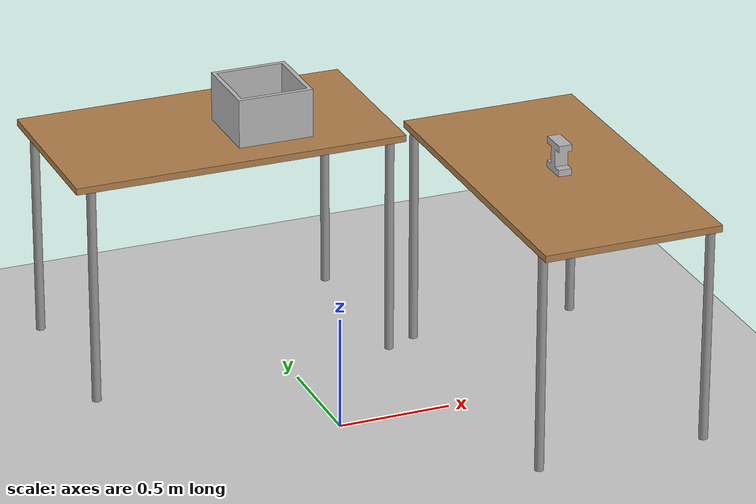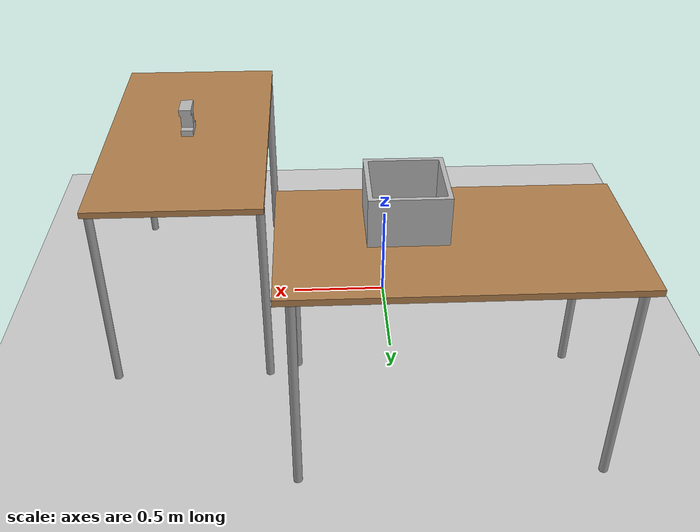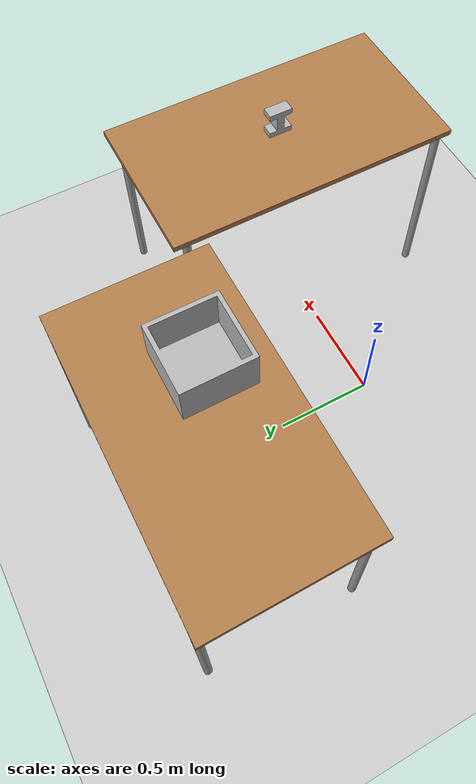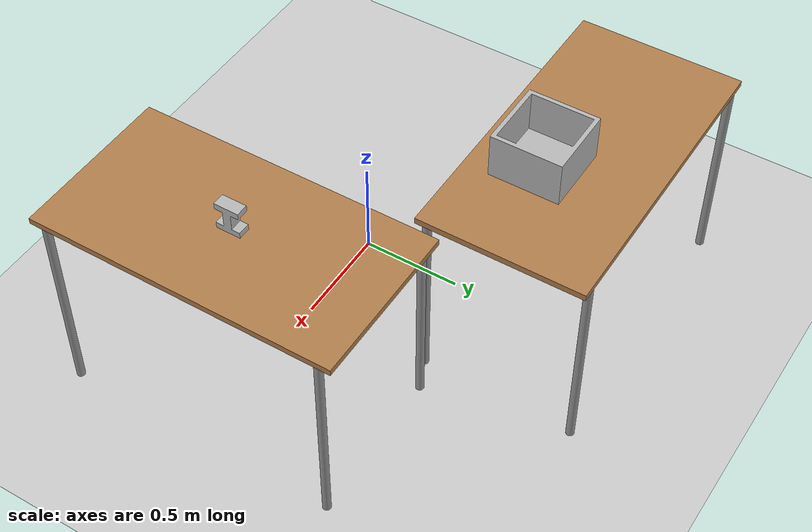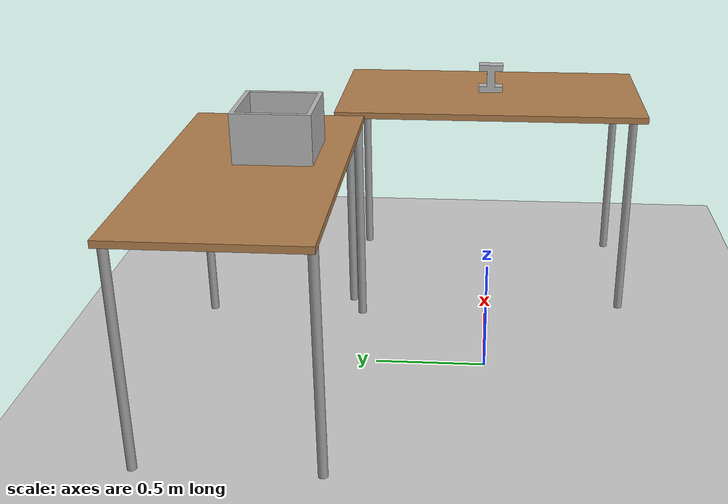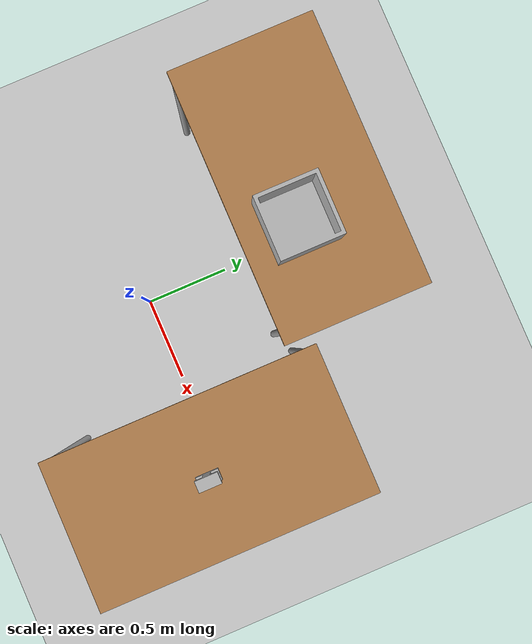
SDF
<?xml version="1.0" ?>
<sdf version="1.4">
  <world name="default">
    <include>
      <uri>model://ground_plane</uri>
    </include>
    <include>
      <uri>model://sun</uri>
    </include>
    <include>
      <uri>model://table</uri>
      <name>table1</name>
      <pose>1.0 0.0 0.0 0 0 -1.5708</pose>
    </include>
    <include>
      <uri>model://object</uri>
      <name>object</name>
      <pose>1.0 0.0 1.02 1.5708 0 1.5708</pose>
    </include>
    <include>
      <uri>model://table</uri>
      <name>table2</name>
      <pose>-0.2 1.0 0.0 0 0 0</pose>
    </include>
    <include>
      <uri>model://FR_box</uri>
      <name>boxx</name>
      <pose>0.0 0.9 1.02 1.5708 0 0</pose>
    </include>
  </world>
</sdf>

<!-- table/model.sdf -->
<sdf version="1.5">
  <model name="table">
    <static>true</static>
    <link name="link">
      <collision name="surface">
        <pose>0 0 1.0 0 0 0</pose>
        <geometry>
          <box>
            <size>1.5 0.8 0.03</size>
          </box>
        </geometry>
        <surface>
          <friction>
            <ode>
              <mu>0.6</mu>
              <mu2>0.6</mu2>
            </ode>
          </friction>
        </surface>
      </collision>
      <visual name="visual1">
        <pose>0 0 1.0 0 0 0</pose>
        <geometry>
          <box>
            <size>1.5 0.8 0.03</size>
          </box>
        </geometry>
        <material>
          <script>
            <uri>model://media/materials/scripts/gazebo.material</uri>
            <name>Gazebo/Wood</name>
          </script>
        </material>
      </visual>
      <collision name="front_left_leg">
        <pose>0.68 0.38 0.5 0 0 0</pose>
        <geometry>
          <cylinder>
            <radius>0.02</radius>
            <length>1.0</length>
          </cylinder>
        </geometry>
      </collision>
      <visual name="front_left_leg">
        <pose>0.68 0.38 0.5 0 0 0</pose>
        <geometry>
          <cylinder>
            <radius>0.02</radius>
            <length>1.0</length>
          </cylinder>
        </geometry>
        <material>
          <script>
            <uri>model://media/materials/scripts/gazebo.material</uri>
            <name>Gazebo/Grey</name>
          </script>
        </material>
      </visual>
      <collision name="front_right_leg">
        <pose>0.68 -0.38 0.5 0 0 0</pose>
        <geometry>
          <cylinder>
            <radius>0.02</radius>
            <length>1.0</length>
          </cylinder>
        </geometry>
      </collision>
      <visual name="front_right_leg">
        <pose>0.68 -0.38 0.5 0 0 0</pose>
        <geometry>
          <cylinder>
            <radius>0.02</radius>
            <length>1.0</length>
          </cylinder>
        </geometry>
        <material>
          <script>
            <uri>model://media/materials/scripts/gazebo.material</uri>
            <name>Gazebo/Grey</name>
          </script>
        </material>
      </visual>
      <collision name="back_right_leg">
        <pose>-0.68 -0.38 0.5 0 0 0</pose>
        <geometry>
          <cylinder>
            <radius>0.02</radius>
            <length>1.0</length>
          </cylinder>
        </geometry>
      </collision>
      <visual name="back_right_leg">
        <pose>-0.68 -0.38 0.5 0 0 0</pose>
        <geometry>
          <cylinder>
            <radius>0.02</radius>
            <length>1.0</length>
          </cylinder>
        </geometry>
        <material>
          <script>
            <uri>model://media/materials/scripts/gazebo.material</uri>
            <name>Gazebo/Grey</name>
          </script>
        </material>
      </visual>
      <collision name="back_left_leg">
        <pose>-0.68 0.38 0.5 0 0 0</pose>
        <geometry>
          <cylinder>
            <radius>0.02</radius>
            <length>1.0</length>
          </cylinder>
        </geometry>
      </collision>
      <visual name="back_left_leg">
        <pose>-0.68 0.38 0.5 0 0 0</pose>
        <geometry>
          <cylinder>
            <radius>0.02</radius>
            <length>1.0</length>
          </cylinder>
        </geometry>
        <material>
          <script>
            <uri>model://media/materials/scripts/gazebo.material</uri>
            <name>Gazebo/Grey</name>
          </script>
        </material>
      </visual>
    </link>
  </model>
</sdf>

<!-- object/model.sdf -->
<sdf version="1.5">
  <model name="object">
    <link name="link">
      <inertial>
        <mass>0.40</mass>
        <inertia>
          <ixx>0.00058</ixx>
          <ixy>0</ixy>
          <ixz>0</ixz>
          <iyy>0.00058</iyy>
          <iyz>0</iyz>
          <izz>0.00019</izz>
        </inertia>
      </inertial>

      <collision name="base">
        <pose>0 0.015 0 0 0 0</pose>
        <geometry>
          <box>
            <size>0.12 0.03 0.06</size>
          </box>
        </geometry>
        <surface>
          <friction>
            <ode>
              <mu>0.01</mu>
              <mu2>0.01</mu2>
            </ode>
          </friction>
        </surface>
      </collision>

      <collision name="center">
        <pose>0 0.07 0 0 0 0</pose>
        <geometry>
          <box>
            <size>0.04 0.08 0.06</size>
          </box>
        </geometry>
        <surface>
          <friction>
            <ode>
              <mu>0.01</mu>
              <mu2>0.01</mu2>
            </ode>
          </friction>
        </surface>
      </collision>

      <collision name="top">
        <pose>0 0.125 0 0 0 0</pose>
        <geometry>
          <box>
            <size>0.12 0.03 0.06</size>
          </box>
        </geometry>
        <surface>
          <friction>
            <ode>
              <mu>0.01</mu>
              <mu2>0.01</mu2>
            </ode>
          </friction>
        </surface>
      </collision>

      <visual name="visual">
        <geometry>
          <mesh>
            <uri>model://object/meshes/object.stl</uri>
            <scale>0.001 0.001 0.001</scale>
          </mesh>
        </geometry>
      </visual>
    </link>
  </model>
</sdf>

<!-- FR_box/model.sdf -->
<sdf version="1.5">
  <model name="FR_box">
    <link name="link">
      <inertial>
        <mass>5.0</mass>
        <inertia>
          <ixx>0.0058</ixx>
          <ixy>0</ixy>
          <ixz>0</ixz>
          <iyy>0.0058</iyy>
          <iyz>0</iyz>
          <izz>0.00019</izz>
        </inertia>
      </inertial>

      <collision name="collision">
        <pose>0 0 0 0 0 0</pose>
        <geometry>
          <mesh>
            <uri>model://FR_box/meshes/FR_box.stl</uri>
            <scale>0.01 0.01 0.01</scale>
          </mesh>
        </geometry>
        <surface>
          <friction>
            <ode>
              <mu>0.01</mu>
              <mu2>0.01</mu2>
            </ode>
          </friction>
        </surface>
      </collision>

      <visual name="visual">
        <geometry>
          <mesh>
            <uri>model://FR_box/meshes/FR_box.stl</uri>
            <scale>0.01 0.01 0.01</scale>
          </mesh>
        </geometry>
      </visual>
    </link>
  </model>
</sdf>
